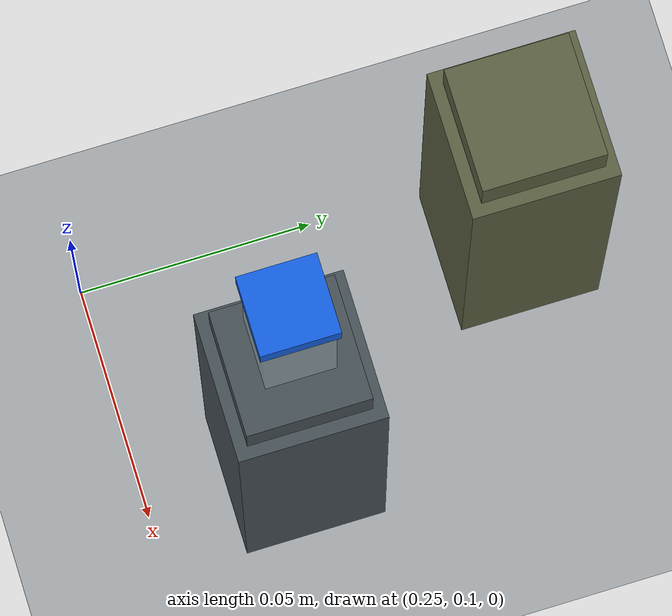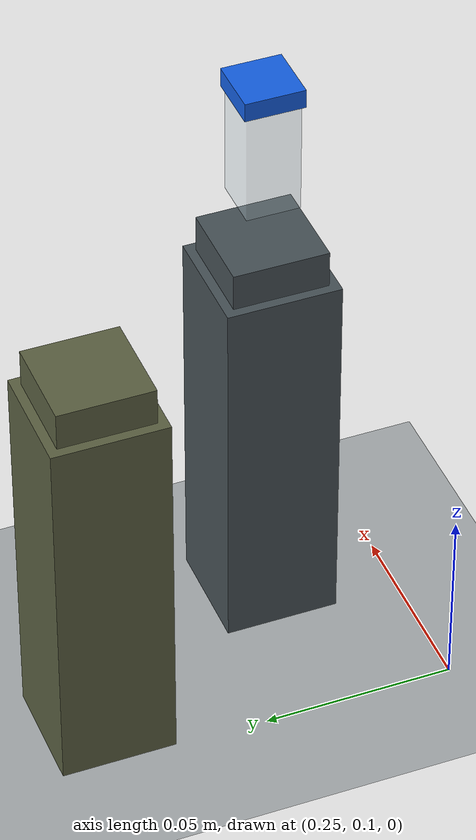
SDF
<?xml version="1.0"?>
<sdf version="1.9">
  <world name="atom_logical_grasp">
    <gravity>0 0 -9.81</gravity>
    <physics name="1ms" type="ignored">
      <max_step_size>0.001</max_step_size>
      <real_time_factor>1.0</real_time_factor>
    </physics>
    <plugin filename="gz-sim-physics-system" name="gz::sim::systems::Physics"/>
    <plugin filename="gz-sim-user-commands-system" name="gz::sim::systems::UserCommands"/>
    <plugin filename="gz-sim-scene-broadcaster-system" name="gz::sim::systems::SceneBroadcaster"/>

    <light type="directional" name="sun">
      <cast_shadows>true</cast_shadows>
      <pose>0 0 10 0 0 0</pose>
      <diffuse>0.8 0.8 0.8 1</diffuse>
      <direction>-0.5 0.1 -0.9</direction>
    </light>

    <model name="ground_plane">
      <static>true</static>
      <link name="link">
        <collision name="collision">
          <geometry><plane><normal>0 0 1</normal><size>4 4</size></plane></geometry>
        </collision>
        <visual name="visual">
          <geometry><plane><normal>0 0 1</normal><size>4 4</size></plane></geometry>
          <material><ambient>0.55 0.57 0.58 1</ambient><diffuse>0.65 0.67 0.68 1</diffuse></material>
        </visual>
      </link>
    </model>

    <model name="cuvette_support">
      <static>true</static>
      <pose>0.2982 0.13235 0 0 0 0</pose>
      <link name="support">
        <collision name="pedestal_collision">
          <pose>0 0 0.0525 0 0 0</pose>
          <geometry><box><size>0.030 0.030 0.105</size></box></geometry>
        </collision>
        <collision name="tray_collision">
          <pose>0 0 0.110 0 0 0</pose>
          <geometry><box><size>0.025 0.025 0.010</size></box></geometry>
        </collision>
        <visual name="visual">
          <pose>0 0 0.0525 0 0 0</pose>
          <geometry><box><size>0.030 0.030 0.105</size></box></geometry>
          <material><ambient>0.18 0.22 0.24 1</ambient><diffuse>0.28 0.32 0.34 1</diffuse></material>
        </visual>
        <visual name="tray_visual">
          <pose>0 0 0.110 0 0 0</pose>
          <geometry><box><size>0.025 0.025 0.010</size></box></geometry>
          <material><ambient>0.18 0.22 0.24 1</ambient><diffuse>0.28 0.32 0.34 1</diffuse></material>
        </visual>
      </link>
    </model>

    <model name="cuvette_target_support">
      <static>true</static>
      <pose>0.2660 0.1890 0 0 0 0</pose>
      <link name="support">
        <collision name="pedestal_collision">
          <pose>0 0 0.0525 0 0 0</pose>
          <geometry><box><size>0.030 0.030 0.105</size></box></geometry>
        </collision>
        <collision name="tray_collision">
          <pose>0 0 0.110 0 0 0</pose>
          <geometry><box><size>0.025 0.025 0.010</size></box></geometry>
        </collision>
        <visual name="visual">
          <pose>0 0 0.0525 0 0 0</pose>
          <geometry><box><size>0.030 0.030 0.105</size></box></geometry>
          <material><ambient>0.22 0.24 0.18 1</ambient><diffuse>0.36 0.38 0.26 1</diffuse></material>
        </visual>
        <visual name="tray_visual">
          <pose>0 0 0.110 0 0 0</pose>
          <geometry><box><size>0.025 0.025 0.010</size></box></geometry>
          <material><ambient>0.22 0.24 0.18 1</ambient><diffuse>0.36 0.38 0.26 1</diffuse></material>
        </visual>
      </link>
    </model>

    <model name="cuvette">
      <pose>0.2982 0.13235 0.1375 0 0 0</pose>
      <link name="body">
        <!-- 10 g remains a provisional report-derived estimate. -->
        <inertial>
          <mass>0.010</mass>
          <inertia>
            <ixx>0.0000018508</ixx><iyy>0.0000018508</iyy><izz>0.0000003267</izz>
            <ixy>0</ixy><ixz>0</ixz><iyz>0</iyz>
          </inertia>
        </inertial>
        <!-- Deliberately undersized: logical attachment is tested independently of contact grasping. -->
        <collision name="logical_collision">
          <geometry><box><size>0.004 0.004 0.035</size></box></geometry>
        </collision>
        <visual name="clear_body_visual">
          <pose>0 0 0.004 0 0 0</pose>
          <geometry><box><size>0.014 0.014 0.030</size></box></geometry>
          <material><ambient>0.82 0.92 0.95 0.35</ambient><diffuse>0.82 0.92 0.95 0.35</diffuse></material>
          <transparency>0.65</transparency>
        </visual>
        <visual name="cap_visual">
          <pose>0 0 0.0215 0 0 0</pose>
          <geometry><box><size>0.0155 0.0155 0.005</size></box></geometry>
          <material><ambient>0.05 0.28 0.75 1</ambient><diffuse>0.08 0.38 0.90 1</diffuse></material>
        </visual>
        <visual name="sample_visual">
          <pose>0 0 -0.007 0 0 0</pose>
          <geometry><box><size>0.005 0.005 0.010</size></box></geometry>
          <material><ambient>0.08 0.48 0.72 0.8</ambient><diffuse>0.08 0.48 0.72 0.8</diffuse></material>
        </visual>
      </link>
      <plugin filename="gz-sim-pose-publisher-system" name="gz::sim::systems::PosePublisher">
        <publish_model_pose>true</publish_model_pose>
        <publish_link_pose>false</publish_link_pose>
        <use_pose_vector_msg>true</use_pose_vector_msg>
        <update_frequency>100</update_frequency>
      </plugin>
    </model>
  </world>
</sdf>
